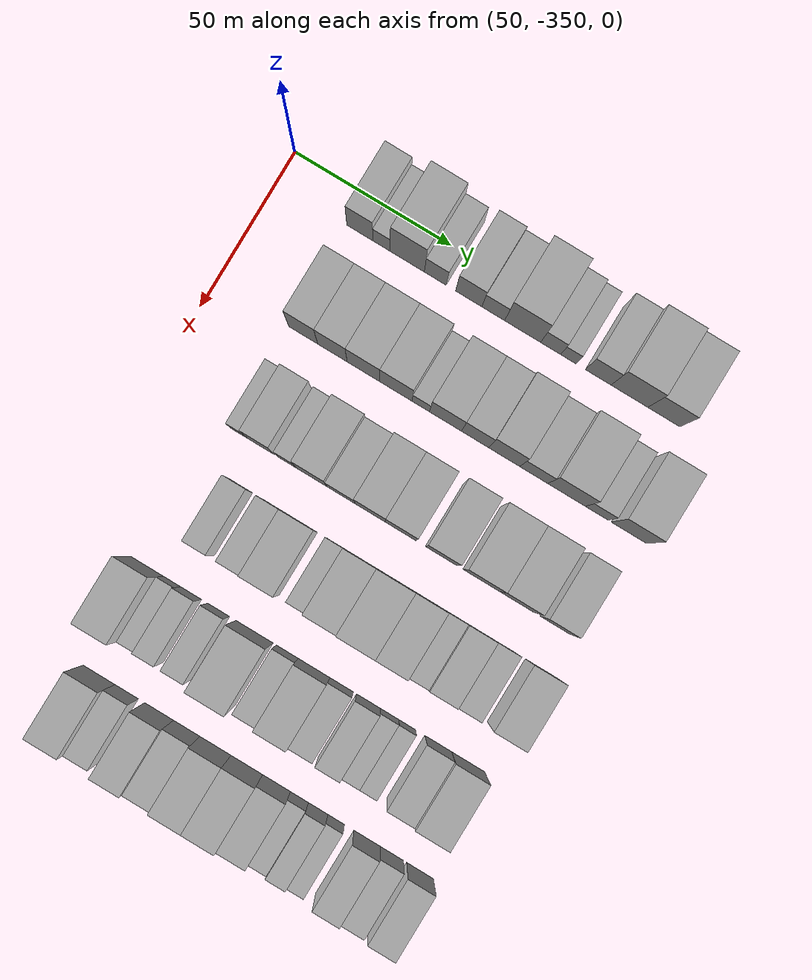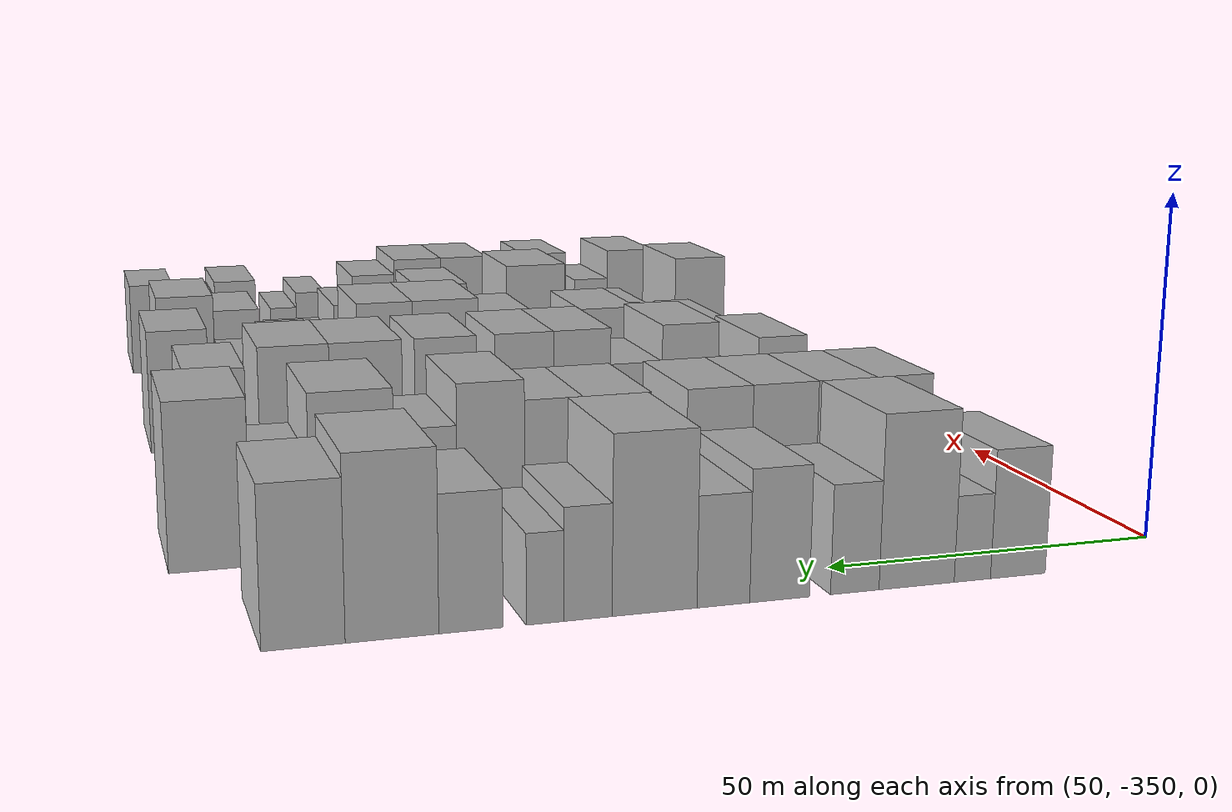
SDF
<sdf version="1.6">
 <world name="default">
  <model name="building_24">
   <static>1</static>
   <pose>50.0000 -323.2628 0 0.000000 0.000000 0.000000</pose>
   <link name="link">
    <pose>0 0 9.00 0 0 0</pose>
    <collision name="collision"><geometry><box><size>20.0000 8.3082 18.0000</size></box></geometry></collision>
    <visual name="visual">
     <cast_shadows>0</cast_shadows>
     <geometry><box><size>20.0000 8.3082 18.0000</size></box></geometry>
     <material>
      <script>
       <uri>model://HANNAS_wall/materials/scripts</uri>
       <uri>model://HANNAS_wall/materials/textures</uri>
       <name>vrc/HANNAS_wall</name>
      </script>
     </material>
    </visual>
   </link>
  </model>
  <model name="building_25">
   <static>1</static>
   <pose>50.0000 -316.3917 0 0.000000 0.000000 0.000000</pose>
   <link name="link">
    <pose>0 0 6.00 0 0 0</pose>
    <collision name="collision"><geometry><box><size>20.0000 5.4340 12.0000</size></box></geometry></collision>
    <visual name="visual">
     <cast_shadows>0</cast_shadows>
     <geometry><box><size>20.0000 5.4340 12.0000</size></box></geometry>
     <material>
      <script>
       <uri>model://HANNAS_wall/materials/scripts</uri>
       <uri>model://HANNAS_wall/materials/textures</uri>
       <name>vrc/HANNAS_wall</name>
      </script>
     </material>
    </visual>
   </link>
  </model>
  <model name="building_26">
   <static>1</static>
   <pose>50.0000 -308.1510 0 0.000000 0.000000 0.000000</pose>
   <link name="link">
    <pose>0 0 12.00 0 0 0</pose>
    <collision name="collision"><geometry><box><size>20.0000 11.0475 24.0000</size></box></geometry></collision>
    <visual name="visual">
     <cast_shadows>0</cast_shadows>
     <geometry><box><size>20.0000 11.0475 24.0000</size></box></geometry>
     <material>
      <script>
       <uri>model://HANNAS_wall/materials/scripts</uri>
       <uri>model://HANNAS_wall/materials/textures</uri>
       <name>vrc/HANNAS_wall</name>
      </script>
     </material>
    </visual>
   </link>
  </model>
  <model name="building_27">
   <static>1</static>
   <pose>50.0000 -299.1299 0 0.000000 0.000000 0.000000</pose>
   <link name="link">
    <pose>0 0 7.50 0 0 0</pose>
    <collision name="collision"><geometry><box><size>20.0000 6.9947 15.0000</size></box></geometry></collision>
    <visual name="visual">
     <cast_shadows>0</cast_shadows>
     <geometry><box><size>20.0000 6.9947 15.0000</size></box></geometry>
     <material>
      <script>
       <uri>model://HANNAS_wall/materials/scripts</uri>
       <uri>model://HANNAS_wall/materials/textures</uri>
       <name>vrc/HANNAS_wall</name>
      </script>
     </material>
    </visual>
   </link>
  </model>
  <model name="building_28">
   <static>1</static>
   <pose>50.0000 -288.4322 0 0.000000 0.000000 0.000000</pose>
   <link name="link">
    <pose>0 0 9.00 0 0 0</pose>
    <collision name="collision"><geometry><box><size>20.0000 8.4007 18.0000</size></box></geometry></collision>
    <visual name="visual">
     <cast_shadows>0</cast_shadows>
     <geometry><box><size>20.0000 8.4007 18.0000</size></box></geometry>
     <material>
      <script>
       <uri>model://HANNAS_wall/materials/scripts</uri>
       <uri>model://HANNAS_wall/materials/textures</uri>
       <name>vrc/HANNAS_wall</name>
      </script>
     </material>
    </visual>
   </link>
  </model>
  <model name="building_29">
   <static>1</static>
   <pose>50.0000 -280.5858 0 0.000000 0.000000 0.000000</pose>
   <link name="link">
    <pose>0 0 7.50 0 0 0</pose>
    <collision name="collision"><geometry><box><size>20.0000 7.2921 15.0000</size></box></geometry></collision>
    <visual name="visual">
     <cast_shadows>0</cast_shadows>
     <geometry><box><size>20.0000 7.2921 15.0000</size></box></geometry>
     <material>
      <script>
       <uri>model://HANNAS_wall/materials/scripts</uri>
       <uri>model://HANNAS_wall/materials/textures</uri>
       <name>vrc/HANNAS_wall</name>
      </script>
     </material>
    </visual>
   </link>
  </model>
  <model name="building_30">
   <static>1</static>
   <pose>50.0000 -271.1964 0 0.000000 0.000000 0.000000</pose>
   <link name="link">
    <pose>0 0 12.00 0 0 0</pose>
    <collision name="collision"><geometry><box><size>20.0000 11.4867 24.0000</size></box></geometry></collision>
    <visual name="visual">
     <cast_shadows>0</cast_shadows>
     <geometry><box><size>20.0000 11.4867 24.0000</size></box></geometry>
     <material>
      <script>
       <uri>model://HANNAS_wall/materials/scripts</uri>
       <uri>model://HANNAS_wall/materials/textures</uri>
       <name>vrc/HANNAS_wall</name>
      </script>
     </material>
    </visual>
   </link>
  </model>
  <model name="building_31">
   <static>1</static>
   <pose>50.0000 -262.2498 0 0.000000 0.000000 0.000000</pose>
   <link name="link">
    <pose>0 0 7.50 0 0 0</pose>
    <collision name="collision"><geometry><box><size>20.0000 6.4064 15.0000</size></box></geometry></collision>
    <visual name="visual">
     <cast_shadows>0</cast_shadows>
     <geometry><box><size>20.0000 6.4064 15.0000</size></box></geometry>
     <material>
      <script>
       <uri>model://HANNAS_wall/materials/scripts</uri>
       <uri>model://HANNAS_wall/materials/textures</uri>
       <name>vrc/HANNAS_wall</name>
      </script>
     </material>
    </visual>
   </link>
  </model>
  <model name="building_32">
   <static>1</static>
   <pose>50.0000 -256.5939 0 0.000000 0.000000 0.000000</pose>
   <link name="link">
    <pose>0 0 6.00 0 0 0</pose>
    <collision name="collision"><geometry><box><size>20.0000 4.9054 12.0000</size></box></geometry></collision>
    <visual name="visual">
     <cast_shadows>0</cast_shadows>
     <geometry><box><size>20.0000 4.9054 12.0000</size></box></geometry>
     <material>
      <script>
       <uri>model://HANNAS_wall/materials/scripts</uri>
       <uri>model://HANNAS_wall/materials/textures</uri>
       <name>vrc/HANNAS_wall</name>
      </script>
     </material>
    </visual>
   </link>
  </model>
  <model name="building_33">
   <static>1</static>
   <pose>50.0000 -247.0510 0 0.000000 0.000000 0.000000</pose>
   <link name="link">
    <pose>0 0 9.00 0 0 0</pose>
    <collision name="collision"><geometry><box><size>20.0000 8.1805 18.0000</size></box></geometry></collision>
    <visual name="visual">
     <cast_shadows>0</cast_shadows>
     <geometry><box><size>20.0000 8.1805 18.0000</size></box></geometry>
     <material>
      <script>
       <uri>model://HANNAS_wall/materials/scripts</uri>
       <uri>model://HANNAS_wall/materials/textures</uri>
       <name>vrc/HANNAS_wall</name>
      </script>
     </material>
    </visual>
   </link>
  </model>
  <model name="building_34">
   <static>1</static>
   <pose>50.0000 -237.1131 0 0.000000 0.000000 0.000000</pose>
   <link name="link">
    <pose>0 0 12.00 0 0 0</pose>
    <collision name="collision"><geometry><box><size>20.0000 11.6952 24.0000</size></box></geometry></collision>
    <visual name="visual">
     <cast_shadows>0</cast_shadows>
     <geometry><box><size>20.0000 11.6952 24.0000</size></box></geometry>
     <material>
      <script>
       <uri>model://HANNAS_wall/materials/scripts</uri>
       <uri>model://HANNAS_wall/materials/textures</uri>
       <name>vrc/HANNAS_wall</name>
      </script>
     </material>
    </visual>
   </link>
  </model>
  <model name="building_35">
   <static>1</static>
   <pose>50.0000 -226.1334 0 0.000000 0.000000 0.000000</pose>
   <link name="link">
    <pose>0 0 10.50 0 0 0</pose>
    <collision name="collision"><geometry><box><size>20.0000 10.2642 21.0000</size></box></geometry></collision>
    <visual name="visual">
     <cast_shadows>0</cast_shadows>
     <geometry><box><size>20.0000 10.2642 21.0000</size></box></geometry>
     <material>
      <script>
       <uri>model://HANNAS_wall/materials/scripts</uri>
       <uri>model://HANNAS_wall/materials/textures</uri>
       <name>vrc/HANNAS_wall</name>
      </script>
     </material>
    </visual>
   </link>
  </model>
  <model name="building_140">
   <static>1</static>
   <pose>82.0000 -321.8566 0 0.000000 0.000000 0.000000</pose>
   <link name="link">
    <pose>0 0 10.50 0 0 0</pose>
    <collision name="collision"><geometry><box><size>20.0000 9.2300 21.0000</size></box></geometry></collision>
    <visual name="visual">
     <cast_shadows>0</cast_shadows>
     <geometry><box><size>20.0000 9.2300 21.0000</size></box></geometry>
     <material>
      <script>
       <uri>model://HANNAS_wall/materials/scripts</uri>
       <uri>model://HANNAS_wall/materials/textures</uri>
       <name>vrc/HANNAS_wall</name>
      </script>
     </material>
    </visual>
   </link>
  </model>
  <model name="building_141">
   <static>1</static>
   <pose>82.0000 -312.5319 0 0.000000 0.000000 0.000000</pose>
   <link name="link">
    <pose>0 0 10.50 0 0 0</pose>
    <collision name="collision"><geometry><box><size>20.0000 9.4194 21.0000</size></box></geometry></collision>
    <visual name="visual">
     <cast_shadows>0</cast_shadows>
     <geometry><box><size>20.0000 9.4194 21.0000</size></box></geometry>
     <material>
      <script>
       <uri>model://HANNAS_wall/materials/scripts</uri>
       <uri>model://HANNAS_wall/materials/textures</uri>
       <name>vrc/HANNAS_wall</name>
      </script>
     </material>
    </visual>
   </link>
  </model>
  <model name="building_142">
   <static>1</static>
   <pose>82.0000 -302.6242 0 0.000000 0.000000 0.000000</pose>
   <link name="link">
    <pose>0 0 10.50 0 0 0</pose>
    <collision name="collision"><geometry><box><size>20.0000 10.3961 21.0000</size></box></geometry></collision>
    <visual name="visual">
     <cast_shadows>0</cast_shadows>
     <geometry><box><size>20.0000 10.3961 21.0000</size></box></geometry>
     <material>
      <script>
       <uri>model://HANNAS_wall/materials/scripts</uri>
       <uri>model://HANNAS_wall/materials/textures</uri>
       <name>vrc/HANNAS_wall</name>
      </script>
     </material>
    </visual>
   </link>
  </model>
  <model name="building_143">
   <static>1</static>
   <pose>82.0000 -292.2958 0 0.000000 0.000000 0.000000</pose>
   <link name="link">
    <pose>0 0 10.50 0 0 0</pose>
    <collision name="collision"><geometry><box><size>20.0000 10.2606 21.0000</size></box></geometry></collision>
    <visual name="visual">
     <cast_shadows>0</cast_shadows>
     <geometry><box><size>20.0000 10.2606 21.0000</size></box></geometry>
     <material>
      <script>
       <uri>model://HANNAS_wall/materials/scripts</uri>
       <uri>model://HANNAS_wall/materials/textures</uri>
       <name>vrc/HANNAS_wall</name>
      </script>
     </material>
    </visual>
   </link>
  </model>
  <model name="building_144">
   <static>1</static>
   <pose>82.0000 -284.3743 0 0.000000 0.000000 0.000000</pose>
   <link name="link">
    <pose>0 0 6.00 0 0 0</pose>
    <collision name="collision"><geometry><box><size>20.0000 5.5825 12.0000</size></box></geometry></collision>
    <visual name="visual">
     <cast_shadows>0</cast_shadows>
     <geometry><box><size>20.0000 5.5825 12.0000</size></box></geometry>
     <material>
      <script>
       <uri>model://HANNAS_wall/materials/scripts</uri>
       <uri>model://HANNAS_wall/materials/textures</uri>
       <name>vrc/HANNAS_wall</name>
      </script>
     </material>
    </visual>
   </link>
  </model>
  <model name="building_145">
   <static>1</static>
   <pose>82.0000 -276.4588 0 0.000000 0.000000 0.000000</pose>
   <link name="link">
    <pose>0 0 10.50 0 0 0</pose>
    <collision name="collision"><geometry><box><size>20.0000 10.2485 21.0000</size></box></geometry></collision>
    <visual name="visual">
     <cast_shadows>0</cast_shadows>
     <geometry><box><size>20.0000 10.2485 21.0000</size></box></geometry>
     <material>
      <script>
       <uri>model://HANNAS_wall/materials/scripts</uri>
       <uri>model://HANNAS_wall/materials/textures</uri>
       <name>vrc/HANNAS_wall</name>
      </script>
     </material>
    </visual>
   </link>
  </model>
  <model name="building_146">
   <static>1</static>
   <pose>82.0000 -266.9857 0 0.000000 0.000000 0.000000</pose>
   <link name="link">
    <pose>0 0 10.50 0 0 0</pose>
    <collision name="collision"><geometry><box><size>20.0000 8.6979 21.0000</size></box></geometry></collision>
    <visual name="visual">
     <cast_shadows>0</cast_shadows>
     <geometry><box><size>20.0000 8.6979 21.0000</size></box></geometry>
     <material>
      <script>
       <uri>model://HANNAS_wall/materials/scripts</uri>
       <uri>model://HANNAS_wall/materials/textures</uri>
       <name>vrc/HANNAS_wall</name>
      </script>
     </material>
    </visual>
   </link>
  </model>
  <model name="building_147">
   <static>1</static>
   <pose>82.0000 -257.7083 0 0.000000 0.000000 0.000000</pose>
   <link name="link">
    <pose>0 0 12.00 0 0 0</pose>
    <collision name="collision"><geometry><box><size>20.0000 9.8568 24.0000</size></box></geometry></collision>
    <visual name="visual">
     <cast_shadows>0</cast_shadows>
     <geometry><box><size>20.0000 9.8568 24.0000</size></box></geometry>
     <material>
      <script>
       <uri>model://HANNAS_wall/materials/scripts</uri>
       <uri>model://HANNAS_wall/materials/textures</uri>
       <name>vrc/HANNAS_wall</name>
      </script>
     </material>
    </visual>
   </link>
  </model>
  <model name="building_148">
   <static>1</static>
   <pose>82.0000 -248.2976 0 0.000000 0.000000 0.000000</pose>
   <link name="link">
    <pose>0 0 9.00 0 0 0</pose>
    <collision name="collision"><geometry><box><size>20.0000 8.9646 18.0000</size></box></geometry></collision>
    <visual name="visual">
     <cast_shadows>0</cast_shadows>
     <geometry><box><size>20.0000 8.9646 18.0000</size></box></geometry>
     <material>
      <script>
       <uri>model://HANNAS_wall/materials/scripts</uri>
       <uri>model://HANNAS_wall/materials/textures</uri>
       <name>vrc/HANNAS_wall</name>
      </script>
     </material>
    </visual>
   </link>
  </model>
  <model name="building_149">
   <static>1</static>
   <pose>82.0000 -237.8539 0 0.000000 0.000000 0.000000</pose>
   <link name="link">
    <pose>0 0 12.00 0 0 0</pose>
    <collision name="collision"><geometry><box><size>20.0000 11.9228 24.0000</size></box></geometry></collision>
    <visual name="visual">
     <cast_shadows>0</cast_shadows>
     <geometry><box><size>20.0000 11.9228 24.0000</size></box></geometry>
     <material>
      <script>
       <uri>model://HANNAS_wall/materials/scripts</uri>
       <uri>model://HANNAS_wall/materials/textures</uri>
       <name>vrc/HANNAS_wall</name>
      </script>
     </material>
    </visual>
   </link>
  </model>
  <model name="building_150">
   <static>1</static>
   <pose>82.0000 -228.2517 0 0.000000 0.000000 0.000000</pose>
   <link name="link">
    <pose>0 0 7.50 0 0 0</pose>
    <collision name="collision"><geometry><box><size>20.0000 7.2816 15.0000</size></box></geometry></collision>
    <visual name="visual">
     <cast_shadows>0</cast_shadows>
     <geometry><box><size>20.0000 7.2816 15.0000</size></box></geometry>
     <material>
      <script>
       <uri>model://HANNAS_wall/materials/scripts</uri>
       <uri>model://HANNAS_wall/materials/textures</uri>
       <name>vrc/HANNAS_wall</name>
      </script>
     </material>
    </visual>
   </link>
  </model>
  <model name="building_151">
   <static>1</static>
   <pose>82.0000 -218.0146 0 0.000000 0.000000 0.000000</pose>
   <link name="link">
    <pose>0 0 12.00 0 0 0</pose>
    <collision name="collision"><geometry><box><size>20.0000 11.1925 24.0000</size></box></geometry></collision>
    <visual name="visual">
     <cast_shadows>0</cast_shadows>
     <geometry><box><size>20.0000 11.1925 24.0000</size></box></geometry>
     <material>
      <script>
       <uri>model://HANNAS_wall/materials/scripts</uri>
       <uri>model://HANNAS_wall/materials/textures</uri>
       <name>vrc/HANNAS_wall</name>
      </script>
     </material>
    </visual>
   </link>
  </model>
  <model name="building_262">
   <static>1</static>
   <pose>114.0000 -322.8476 0 0.000000 0.000000 0.000000</pose>
   <link name="link">
    <pose>0 0 6.00 0 0 0</pose>
    <collision name="collision"><geometry><box><size>20.0000 5.3714 12.0000</size></box></geometry></collision>
    <visual name="visual">
     <cast_shadows>0</cast_shadows>
     <geometry><box><size>20.0000 5.3714 12.0000</size></box></geometry>
     <material>
      <script>
       <uri>model://HANNAS_wall/materials/scripts</uri>
       <uri>model://HANNAS_wall/materials/textures</uri>
       <name>vrc/HANNAS_wall</name>
      </script>
     </material>
    </visual>
   </link>
  </model>
  <model name="building_263">
   <static>1</static>
   <pose>114.0000 -315.8337 0 0.000000 0.000000 0.000000</pose>
   <link name="link">
    <pose>0 0 10.50 0 0 0</pose>
    <collision name="collision"><geometry><box><size>20.0000 8.6563 21.0000</size></box></geometry></collision>
    <visual name="visual">
     <cast_shadows>0</cast_shadows>
     <geometry><box><size>20.0000 8.6563 21.0000</size></box></geometry>
     <material>
      <script>
       <uri>model://HANNAS_wall/materials/scripts</uri>
       <uri>model://HANNAS_wall/materials/textures</uri>
       <name>vrc/HANNAS_wall</name>
      </script>
     </material>
    </visual>
   </link>
  </model>
  <model name="building_264">
   <static>1</static>
   <pose>114.0000 -307.4612 0 0.000000 0.000000 0.000000</pose>
   <link name="link">
    <pose>0 0 7.50 0 0 0</pose>
    <collision name="collision"><geometry><box><size>20.0000 6.0888 15.0000</size></box></geometry></collision>
    <visual name="visual">
     <cast_shadows>0</cast_shadows>
     <geometry><box><size>20.0000 6.0888 15.0000</size></box></geometry>
     <material>
      <script>
       <uri>model://HANNAS_wall/materials/scripts</uri>
       <uri>model://HANNAS_wall/materials/textures</uri>
       <name>vrc/HANNAS_wall</name>
      </script>
     </material>
    </visual>
   </link>
  </model>
  <model name="building_265">
   <static>1</static>
   <pose>114.0000 -299.5221 0 0.000000 0.000000 0.000000</pose>
   <link name="link">
    <pose>0 0 12.00 0 0 0</pose>
    <collision name="collision"><geometry><box><size>20.0000 9.7893 24.0000</size></box></geometry></collision>
    <visual name="visual">
     <cast_shadows>0</cast_shadows>
     <geometry><box><size>20.0000 9.7893 24.0000</size></box></geometry>
     <material>
      <script>
       <uri>model://HANNAS_wall/materials/scripts</uri>
       <uri>model://HANNAS_wall/materials/textures</uri>
       <name>vrc/HANNAS_wall</name>
      </script>
     </material>
    </visual>
   </link>
  </model>
  <model name="building_266">
   <static>1</static>
   <pose>114.0000 -290.2111 0 0.000000 0.000000 0.000000</pose>
   <link name="link">
    <pose>0 0 9.00 0 0 0</pose>
    <collision name="collision"><geometry><box><size>20.0000 8.8328 18.0000</size></box></geometry></collision>
    <visual name="visual">
     <cast_shadows>0</cast_shadows>
     <geometry><box><size>20.0000 8.8328 18.0000</size></box></geometry>
     <material>
      <script>
       <uri>model://HANNAS_wall/materials/scripts</uri>
       <uri>model://HANNAS_wall/materials/textures</uri>
       <name>vrc/HANNAS_wall</name>
      </script>
     </material>
    </visual>
   </link>
  </model>
  <model name="building_267">
   <static>1</static>
   <pose>114.0000 -280.9830 0 0.000000 0.000000 0.000000</pose>
   <link name="link">
    <pose>0 0 12.00 0 0 0</pose>
    <collision name="collision"><geometry><box><size>20.0000 9.6234 24.0000</size></box></geometry></collision>
    <visual name="visual">
     <cast_shadows>0</cast_shadows>
     <geometry><box><size>20.0000 9.6234 24.0000</size></box></geometry>
     <material>
      <script>
       <uri>model://HANNAS_wall/materials/scripts</uri>
       <uri>model://HANNAS_wall/materials/textures</uri>
       <name>vrc/HANNAS_wall</name>
      </script>
     </material>
    </visual>
   </link>
  </model>
  <model name="building_268">
   <static>1</static>
   <pose>114.0000 -271.3017 0 0.000000 0.000000 0.000000</pose>
   <link name="link">
    <pose>0 0 12.00 0 0 0</pose>
    <collision name="collision"><geometry><box><size>20.0000 9.7391 24.0000</size></box></geometry></collision>
    <visual name="visual">
     <cast_shadows>0</cast_shadows>
     <geometry><box><size>20.0000 9.7391 24.0000</size></box></geometry>
     <material>
      <script>
       <uri>model://HANNAS_wall/materials/scripts</uri>
       <uri>model://HANNAS_wall/materials/textures</uri>
       <name>vrc/HANNAS_wall</name>
      </script>
     </material>
    </visual>
   </link>
  </model>
  <model name="building_269">
   <static>1</static>
   <pose>114.0000 -258.4647 0 0.000000 0.000000 0.000000</pose>
   <link name="link">
    <pose>0 0 12.00 0 0 0</pose>
    <collision name="collision"><geometry><box><size>20.0000 9.9349 24.0000</size></box></geometry></collision>
    <visual name="visual">
     <cast_shadows>0</cast_shadows>
     <geometry><box><size>20.0000 9.9349 24.0000</size></box></geometry>
     <material>
      <script>
       <uri>model://HANNAS_wall/materials/scripts</uri>
       <uri>model://HANNAS_wall/materials/textures</uri>
       <name>vrc/HANNAS_wall</name>
      </script>
     </material>
    </visual>
   </link>
  </model>
  <model name="building_270">
   <static>1</static>
   <pose>114.0000 -245.7603 0 0.000000 0.000000 0.000000</pose>
   <link name="link">
    <pose>0 0 12.00 0 0 0</pose>
    <collision name="collision"><geometry><box><size>20.0000 11.4740 24.0000</size></box></geometry></collision>
    <visual name="visual">
     <cast_shadows>0</cast_shadows>
     <geometry><box><size>20.0000 11.4740 24.0000</size></box></geometry>
     <material>
      <script>
       <uri>model://HANNAS_wall/materials/scripts</uri>
       <uri>model://HANNAS_wall/materials/textures</uri>
       <name>vrc/HANNAS_wall</name>
      </script>
     </material>
    </visual>
   </link>
  </model>
  <model name="building_271">
   <static>1</static>
   <pose>114.0000 -234.5190 0 0.000000 0.000000 0.000000</pose>
   <link name="link">
    <pose>0 0 12.00 0 0 0</pose>
    <collision name="collision"><geometry><box><size>20.0000 11.0085 24.0000</size></box></geometry></collision>
    <visual name="visual">
     <cast_shadows>0</cast_shadows>
     <geometry><box><size>20.0000 11.0085 24.0000</size></box></geometry>
     <material>
      <script>
       <uri>model://HANNAS_wall/materials/scripts</uri>
       <uri>model://HANNAS_wall/materials/textures</uri>
       <name>vrc/HANNAS_wall</name>
      </script>
     </material>
    </visual>
   </link>
  </model>
  <model name="building_272">
   <static>1</static>
   <pose>114.0000 -222.3102 0 0.000000 0.000000 0.000000</pose>
   <link name="link">
    <pose>0 0 10.50 0 0 0</pose>
    <collision name="collision"><geometry><box><size>20.0000 9.4092 21.0000</size></box></geometry></collision>
    <visual name="visual">
     <cast_shadows>0</cast_shadows>
     <geometry><box><size>20.0000 9.4092 21.0000</size></box></geometry>
     <material>
      <script>
       <uri>model://HANNAS_wall/materials/scripts</uri>
       <uri>model://HANNAS_wall/materials/textures</uri>
       <name>vrc/HANNAS_wall</name>
      </script>
     </material>
    </visual>
   </link>
  </model>
  <model name="building_382">
   <static>1</static>
   <pose>146.0000 -314.8124 0 0.000000 0.000000 0.000000</pose>
   <link name="link">
    <pose>0 0 9.00 0 0 0</pose>
    <collision name="collision"><geometry><box><size>20.0000 7.2104 18.0000</size></box></geometry></collision>
    <visual name="visual">
     <cast_shadows>0</cast_shadows>
     <geometry><box><size>20.0000 7.2104 18.0000</size></box></geometry>
     <material>
      <script>
       <uri>model://HANNAS_wall/materials/scripts</uri>
       <uri>model://HANNAS_wall/materials/textures</uri>
       <name>vrc/HANNAS_wall</name>
      </script>
     </material>
    </visual>
   </link>
  </model>
  <model name="building_383">
   <static>1</static>
   <pose>146.0000 -304.5904 0 0.000000 0.000000 0.000000</pose>
   <link name="link">
    <pose>0 0 9.00 0 0 0</pose>
    <collision name="collision"><geometry><box><size>20.0000 7.2335 18.0000</size></box></geometry></collision>
    <visual name="visual">
     <cast_shadows>0</cast_shadows>
     <geometry><box><size>20.0000 7.2335 18.0000</size></box></geometry>
     <material>
      <script>
       <uri>model://HANNAS_wall/materials/scripts</uri>
       <uri>model://HANNAS_wall/materials/textures</uri>
       <name>vrc/HANNAS_wall</name>
      </script>
     </material>
    </visual>
   </link>
  </model>
  <model name="building_384">
   <static>1</static>
   <pose>146.0000 -295.7489 0 0.000000 0.000000 0.000000</pose>
   <link name="link">
    <pose>0 0 10.50 0 0 0</pose>
    <collision name="collision"><geometry><box><size>20.0000 10.4496 21.0000</size></box></geometry></collision>
    <visual name="visual">
     <cast_shadows>0</cast_shadows>
     <geometry><box><size>20.0000 10.4496 21.0000</size></box></geometry>
     <material>
      <script>
       <uri>model://HANNAS_wall/materials/scripts</uri>
       <uri>model://HANNAS_wall/materials/textures</uri>
       <name>vrc/HANNAS_wall</name>
      </script>
     </material>
    </visual>
   </link>
  </model>
  <model name="building_385">
   <static>1</static>
   <pose>146.0000 -284.6674 0 0.000000 0.000000 0.000000</pose>
   <link name="link">
    <pose>0 0 6.00 0 0 0</pose>
    <collision name="collision"><geometry><box><size>20.0000 5.7134 12.0000</size></box></geometry></collision>
    <visual name="visual">
     <cast_shadows>0</cast_shadows>
     <geometry><box><size>20.0000 5.7134 12.0000</size></box></geometry>
     <material>
      <script>
       <uri>model://HANNAS_wall/materials/scripts</uri>
       <uri>model://HANNAS_wall/materials/textures</uri>
       <name>vrc/HANNAS_wall</name>
      </script>
     </material>
    </visual>
   </link>
  </model>
  <model name="building_386">
   <static>1</static>
   <pose>146.0000 -276.7132 0 0.000000 0.000000 0.000000</pose>
   <link name="link">
    <pose>0 0 10.50 0 0 0</pose>
    <collision name="collision"><geometry><box><size>20.0000 10.1951 21.0000</size></box></geometry></collision>
    <visual name="visual">
     <cast_shadows>0</cast_shadows>
     <geometry><box><size>20.0000 10.1951 21.0000</size></box></geometry>
     <material>
      <script>
       <uri>model://HANNAS_wall/materials/scripts</uri>
       <uri>model://HANNAS_wall/materials/textures</uri>
       <name>vrc/HANNAS_wall</name>
      </script>
     </material>
    </visual>
   </link>
  </model>
  <model name="building_387">
   <static>1</static>
   <pose>146.0000 -265.7053 0 0.000000 0.000000 0.000000</pose>
   <link name="link">
    <pose>0 0 12.00 0 0 0</pose>
    <collision name="collision"><geometry><box><size>20.0000 11.8207 24.0000</size></box></geometry></collision>
    <visual name="visual">
     <cast_shadows>0</cast_shadows>
     <geometry><box><size>20.0000 11.8207 24.0000</size></box></geometry>
     <material>
      <script>
       <uri>model://HANNAS_wall/materials/scripts</uri>
       <uri>model://HANNAS_wall/materials/textures</uri>
       <name>vrc/HANNAS_wall</name>
      </script>
     </material>
    </visual>
   </link>
  </model>
  <model name="building_388">
   <static>1</static>
   <pose>146.0000 -254.8939 0 0.000000 0.000000 0.000000</pose>
   <link name="link">
    <pose>0 0 12.00 0 0 0</pose>
    <collision name="collision"><geometry><box><size>20.0000 9.8021 24.0000</size></box></geometry></collision>
    <visual name="visual">
     <cast_shadows>0</cast_shadows>
     <geometry><box><size>20.0000 9.8021 24.0000</size></box></geometry>
     <material>
      <script>
       <uri>model://HANNAS_wall/materials/scripts</uri>
       <uri>model://HANNAS_wall/materials/textures</uri>
       <name>vrc/HANNAS_wall</name>
      </script>
     </material>
    </visual>
   </link>
  </model>
  <model name="building_389">
   <static>1</static>
   <pose>146.0000 -246.7170 0 0.000000 0.000000 0.000000</pose>
   <link name="link">
    <pose>0 0 7.50 0 0 0</pose>
    <collision name="collision"><geometry><box><size>20.0000 6.5517 15.0000</size></box></geometry></collision>
    <visual name="visual">
     <cast_shadows>0</cast_shadows>
     <geometry><box><size>20.0000 6.5517 15.0000</size></box></geometry>
     <material>
      <script>
       <uri>model://HANNAS_wall/materials/scripts</uri>
       <uri>model://HANNAS_wall/materials/textures</uri>
       <name>vrc/HANNAS_wall</name>
      </script>
     </material>
    </visual>
   </link>
  </model>
  <model name="building_390">
   <static>1</static>
   <pose>146.0000 -239.0877 0 0.000000 0.000000 0.000000</pose>
   <link name="link">
    <pose>0 0 9.00 0 0 0</pose>
    <collision name="collision"><geometry><box><size>20.0000 8.7068 18.0000</size></box></geometry></collision>
    <visual name="visual">
     <cast_shadows>0</cast_shadows>
     <geometry><box><size>20.0000 8.7068 18.0000</size></box></geometry>
     <material>
      <script>
       <uri>model://HANNAS_wall/materials/scripts</uri>
       <uri>model://HANNAS_wall/materials/textures</uri>
       <name>vrc/HANNAS_wall</name>
      </script>
     </material>
    </visual>
   </link>
  </model>
  <model name="building_391">
   <static>1</static>
   <pose>146.0000 -231.0192 0 0.000000 0.000000 0.000000</pose>
   <link name="link">
    <pose>0 0 7.50 0 0 0</pose>
    <collision name="collision"><geometry><box><size>20.0000 7.4302 15.0000</size></box></geometry></collision>
    <visual name="visual">
     <cast_shadows>0</cast_shadows>
     <geometry><box><size>20.0000 7.4302 15.0000</size></box></geometry>
     <material>
      <script>
       <uri>model://HANNAS_wall/materials/scripts</uri>
       <uri>model://HANNAS_wall/materials/textures</uri>
       <name>vrc/HANNAS_wall</name>
      </script>
     </material>
    </visual>
   </link>
  </model>
  <model name="building_392">
   <static>1</static>
   <pose>146.0000 -219.2615 0 0.000000 0.000000 0.000000</pose>
   <link name="link">
    <pose>0 0 10.50 0 0 0</pose>
    <collision name="collision"><geometry><box><size>20.0000 10.0850 21.0000</size></box></geometry></collision>
    <visual name="visual">
     <cast_shadows>0</cast_shadows>
     <geometry><box><size>20.0000 10.0850 21.0000</size></box></geometry>
     <material>
      <script>
       <uri>model://HANNAS_wall/materials/scripts</uri>
       <uri>model://HANNAS_wall/materials/textures</uri>
       <name>vrc/HANNAS_wall</name>
      </script>
     </material>
    </visual>
   </link>
  </model>
  <model name="building_499">
   <static>1</static>
   <pose>178.0000 -325.3308 0 0.000000 0.000000 0.000000</pose>
   <link name="link">
    <pose>0 0 12.00 0 0 0</pose>
    <collision name="collision"><geometry><box><size>20.0000 10.5188 24.0000</size></box></geometry></collision>
    <visual name="visual">
     <cast_shadows>0</cast_shadows>
     <geometry><box><size>20.0000 10.5188 24.0000</size></box></geometry>
     <material>
      <script>
       <uri>model://HANNAS_wall/materials/scripts</uri>
       <uri>model://HANNAS_wall/materials/textures</uri>
       <name>vrc/HANNAS_wall</name>
      </script>
     </material>
    </visual>
   </link>
  </model>
  <model name="building_500">
   <static>1</static>
   <pose>178.0000 -317.3652 0 0.000000 0.000000 0.000000</pose>
   <link name="link">
    <pose>0 0 6.00 0 0 0</pose>
    <collision name="collision"><geometry><box><size>20.0000 5.4123 12.0000</size></box></geometry></collision>
    <visual name="visual">
     <cast_shadows>0</cast_shadows>
     <geometry><box><size>20.0000 5.4123 12.0000</size></box></geometry>
     <material>
      <script>
       <uri>model://HANNAS_wall/materials/scripts</uri>
       <uri>model://HANNAS_wall/materials/textures</uri>
       <name>vrc/HANNAS_wall</name>
      </script>
     </material>
    </visual>
   </link>
  </model>
  <model name="building_501">
   <static>1</static>
   <pose>178.0000 -311.3197 0 0.000000 0.000000 0.000000</pose>
   <link name="link">
    <pose>0 0 7.50 0 0 0</pose>
    <collision name="collision"><geometry><box><size>20.0000 6.6788 15.0000</size></box></geometry></collision>
    <visual name="visual">
     <cast_shadows>0</cast_shadows>
     <geometry><box><size>20.0000 6.6788 15.0000</size></box></geometry>
     <material>
      <script>
       <uri>model://HANNAS_wall/materials/scripts</uri>
       <uri>model://HANNAS_wall/materials/textures</uri>
       <name>vrc/HANNAS_wall</name>
      </script>
     </material>
    </visual>
   </link>
  </model>
  <model name="building_502">
   <static>1</static>
   <pose>178.0000 -302.4929 0 0.000000 0.000000 0.000000</pose>
   <link name="link">
    <pose>0 0 7.50 0 0 0</pose>
    <collision name="collision"><geometry><box><size>20.0000 6.9747 15.0000</size></box></geometry></collision>
    <visual name="visual">
     <cast_shadows>0</cast_shadows>
     <geometry><box><size>20.0000 6.9747 15.0000</size></box></geometry>
     <material>
      <script>
       <uri>model://HANNAS_wall/materials/scripts</uri>
       <uri>model://HANNAS_wall/materials/textures</uri>
       <name>vrc/HANNAS_wall</name>
      </script>
     </material>
    </visual>
   </link>
  </model>
  <model name="building_503">
   <static>1</static>
   <pose>178.0000 -291.0729 0 0.000000 0.000000 0.000000</pose>
   <link name="link">
    <pose>0 0 12.00 0 0 0</pose>
    <collision name="collision"><geometry><box><size>20.0000 11.8653 24.0000</size></box></geometry></collision>
    <visual name="visual">
     <cast_shadows>0</cast_shadows>
     <geometry><box><size>20.0000 11.8653 24.0000</size></box></geometry>
     <material>
      <script>
       <uri>model://HANNAS_wall/materials/scripts</uri>
       <uri>model://HANNAS_wall/materials/textures</uri>
       <name>vrc/HANNAS_wall</name>
      </script>
     </material>
    </visual>
   </link>
  </model>
  <model name="building_504">
   <static>1</static>
   <pose>178.0000 -280.6412 0 0.000000 0.000000 0.000000</pose>
   <link name="link">
    <pose>0 0 7.50 0 0 0</pose>
    <collision name="collision"><geometry><box><size>20.0000 6.9980 15.0000</size></box></geometry></collision>
    <visual name="visual">
     <cast_shadows>0</cast_shadows>
     <geometry><box><size>20.0000 6.9980 15.0000</size></box></geometry>
     <material>
      <script>
       <uri>model://HANNAS_wall/materials/scripts</uri>
       <uri>model://HANNAS_wall/materials/textures</uri>
       <name>vrc/HANNAS_wall</name>
      </script>
     </material>
    </visual>
   </link>
  </model>
  <model name="building_505">
   <static>1</static>
   <pose>178.0000 -272.1236 0 0.000000 0.000000 0.000000</pose>
   <link name="link">
    <pose>0 0 10.50 0 0 0</pose>
    <collision name="collision"><geometry><box><size>20.0000 10.0372 21.0000</size></box></geometry></collision>
    <visual name="visual">
     <cast_shadows>0</cast_shadows>
     <geometry><box><size>20.0000 10.0372 21.0000</size></box></geometry>
     <material>
      <script>
       <uri>model://HANNAS_wall/materials/scripts</uri>
       <uri>model://HANNAS_wall/materials/textures</uri>
       <name>vrc/HANNAS_wall</name>
      </script>
     </material>
    </visual>
   </link>
  </model>
  <model name="building_506">
   <static>1</static>
   <pose>178.0000 -263.3645 0 0.000000 0.000000 0.000000</pose>
   <link name="link">
    <pose>0 0 7.50 0 0 0</pose>
    <collision name="collision"><geometry><box><size>20.0000 7.4810 15.0000</size></box></geometry></collision>
    <visual name="visual">
     <cast_shadows>0</cast_shadows>
     <geometry><box><size>20.0000 7.4810 15.0000</size></box></geometry>
     <material>
      <script>
       <uri>model://HANNAS_wall/materials/scripts</uri>
       <uri>model://HANNAS_wall/materials/textures</uri>
       <name>vrc/HANNAS_wall</name>
      </script>
     </material>
    </visual>
   </link>
  </model>
  <model name="building_507">
   <static>1</static>
   <pose>178.0000 -254.8418 0 0.000000 0.000000 0.000000</pose>
   <link name="link">
    <pose>0 0 9.00 0 0 0</pose>
    <collision name="collision"><geometry><box><size>20.0000 7.5644 18.0000</size></box></geometry></collision>
    <visual name="visual">
     <cast_shadows>0</cast_shadows>
     <geometry><box><size>20.0000 7.5644 18.0000</size></box></geometry>
     <material>
      <script>
       <uri>model://HANNAS_wall/materials/scripts</uri>
       <uri>model://HANNAS_wall/materials/textures</uri>
       <name>vrc/HANNAS_wall</name>
      </script>
     </material>
    </visual>
   </link>
  </model>
  <model name="building_508">
   <static>1</static>
   <pose>178.0000 -248.1193 0 0.000000 0.000000 0.000000</pose>
   <link name="link">
    <pose>0 0 6.00 0 0 0</pose>
    <collision name="collision"><geometry><box><size>20.0000 5.8806 12.0000</size></box></geometry></collision>
    <visual name="visual">
     <cast_shadows>0</cast_shadows>
     <geometry><box><size>20.0000 5.8806 12.0000</size></box></geometry>
     <material>
      <script>
       <uri>model://HANNAS_wall/materials/scripts</uri>
       <uri>model://HANNAS_wall/materials/textures</uri>
       <name>vrc/HANNAS_wall</name>
      </script>
     </material>
    </visual>
   </link>
  </model>
  <model name="building_509">
   <static>1</static>
   <pose>178.0000 -242.5366 0 0.000000 0.000000 0.000000</pose>
   <link name="link">
    <pose>0 0 6.00 0 0 0</pose>
    <collision name="collision"><geometry><box><size>20.0000 5.2847 12.0000</size></box></geometry></collision>
    <visual name="visual">
     <cast_shadows>0</cast_shadows>
     <geometry><box><size>20.0000 5.2847 12.0000</size></box></geometry>
     <material>
      <script>
       <uri>model://HANNAS_wall/materials/scripts</uri>
       <uri>model://HANNAS_wall/materials/textures</uri>
       <name>vrc/HANNAS_wall</name>
      </script>
     </material>
    </visual>
   </link>
  </model>
  <model name="building_510">
   <static>1</static>
   <pose>178.0000 -232.6457 0 0.000000 0.000000 0.000000</pose>
   <link name="link">
    <pose>0 0 9.00 0 0 0</pose>
    <collision name="collision"><geometry><box><size>20.0000 8.4971 18.0000</size></box></geometry></collision>
    <visual name="visual">
     <cast_shadows>0</cast_shadows>
     <geometry><box><size>20.0000 8.4971 18.0000</size></box></geometry>
     <material>
      <script>
       <uri>model://HANNAS_wall/materials/scripts</uri>
       <uri>model://HANNAS_wall/materials/textures</uri>
       <name>vrc/HANNAS_wall</name>
      </script>
     </material>
    </visual>
   </link>
  </model>
  <model name="building_511">
   <static>1</static>
   <pose>178.0000 -223.1670 0 0.000000 0.000000 0.000000</pose>
   <link name="link">
    <pose>0 0 10.50 0 0 0</pose>
    <collision name="collision"><geometry><box><size>20.0000 10.4602 21.0000</size></box></geometry></collision>
    <visual name="visual">
     <cast_shadows>0</cast_shadows>
     <geometry><box><size>20.0000 10.4602 21.0000</size></box></geometry>
     <material>
      <script>
       <uri>model://HANNAS_wall/materials/scripts</uri>
       <uri>model://HANNAS_wall/materials/textures</uri>
       <name>vrc/HANNAS_wall</name>
      </script>
     </material>
    </visual>
   </link>
  </model>
  <model name="building_626">
   <static>1</static>
   <pose>210.0000 -321.1500 0 0.000000 0.000000 0.000000</pose>
   <link name="link">
    <pose>0 0 10.50 0 0 0</pose>
    <collision name="collision"><geometry><box><size>20.0000 10.1762 21.0000</size></box></geometry></collision>
    <visual name="visual">
     <cast_shadows>0</cast_shadows>
     <geometry><box><size>20.0000 10.1762 21.0000</size></box></geometry>
     <material>
      <script>
       <uri>model://HANNAS_wall/materials/scripts</uri>
       <uri>model://HANNAS_wall/materials/textures</uri>
       <name>vrc/HANNAS_wall</name>
      </script>
     </material>
    </visual>
   </link>
  </model>
  <model name="building_627">
   <static>1</static>
   <pose>210.0000 -312.3242 0 0.000000 0.000000 0.000000</pose>
   <link name="link">
    <pose>0 0 7.50 0 0 0</pose>
    <collision name="collision"><geometry><box><size>20.0000 7.4754 15.0000</size></box></geometry></collision>
    <visual name="visual">
     <cast_shadows>0</cast_shadows>
     <geometry><box><size>20.0000 7.4754 15.0000</size></box></geometry>
     <material>
      <script>
       <uri>model://HANNAS_wall/materials/scripts</uri>
       <uri>model://HANNAS_wall/materials/textures</uri>
       <name>vrc/HANNAS_wall</name>
      </script>
     </material>
    </visual>
   </link>
  </model>
  <model name="building_628">
   <static>1</static>
   <pose>210.0000 -301.9817 0 0.000000 0.000000 0.000000</pose>
   <link name="link">
    <pose>0 0 10.50 0 0 0</pose>
    <collision name="collision"><geometry><box><size>20.0000 9.2097 21.0000</size></box></geometry></collision>
    <visual name="visual">
     <cast_shadows>0</cast_shadows>
     <geometry><box><size>20.0000 9.2097 21.0000</size></box></geometry>
     <material>
      <script>
       <uri>model://HANNAS_wall/materials/scripts</uri>
       <uri>model://HANNAS_wall/materials/textures</uri>
       <name>vrc/HANNAS_wall</name>
      </script>
     </material>
    </visual>
   </link>
  </model>
  <model name="building_629">
   <static>1</static>
   <pose>210.0000 -293.1928 0 0.000000 0.000000 0.000000</pose>
   <link name="link">
    <pose>0 0 9.00 0 0 0</pose>
    <collision name="collision"><geometry><box><size>20.0000 8.3680 18.0000</size></box></geometry></collision>
    <visual name="visual">
     <cast_shadows>0</cast_shadows>
     <geometry><box><size>20.0000 8.3680 18.0000</size></box></geometry>
     <material>
      <script>
       <uri>model://HANNAS_wall/materials/scripts</uri>
       <uri>model://HANNAS_wall/materials/textures</uri>
       <name>vrc/HANNAS_wall</name>
      </script>
     </material>
    </visual>
   </link>
  </model>
  <model name="building_630">
   <static>1</static>
   <pose>210.0000 -284.0347 0 0.000000 0.000000 0.000000</pose>
   <link name="link">
    <pose>0 0 10.50 0 0 0</pose>
    <collision name="collision"><geometry><box><size>20.0000 9.9482 21.0000</size></box></geometry></collision>
    <visual name="visual">
     <cast_shadows>0</cast_shadows>
     <geometry><box><size>20.0000 9.9482 21.0000</size></box></geometry>
     <material>
      <script>
       <uri>model://HANNAS_wall/materials/scripts</uri>
       <uri>model://HANNAS_wall/materials/textures</uri>
       <name>vrc/HANNAS_wall</name>
      </script>
     </material>
    </visual>
   </link>
  </model>
  <model name="building_631">
   <static>1</static>
   <pose>210.0000 -274.0472 0 0.000000 0.000000 0.000000</pose>
   <link name="link">
    <pose>0 0 10.50 0 0 0</pose>
    <collision name="collision"><geometry><box><size>20.0000 10.0268 21.0000</size></box></geometry></collision>
    <visual name="visual">
     <cast_shadows>0</cast_shadows>
     <geometry><box><size>20.0000 10.0268 21.0000</size></box></geometry>
     <material>
      <script>
       <uri>model://HANNAS_wall/materials/scripts</uri>
       <uri>model://HANNAS_wall/materials/textures</uri>
       <name>vrc/HANNAS_wall</name>
      </script>
     </material>
    </visual>
   </link>
  </model>
  <model name="building_632">
   <static>1</static>
   <pose>210.0000 -264.5925 0 0.000000 0.000000 0.000000</pose>
   <link name="link">
    <pose>0 0 9.00 0 0 0</pose>
    <collision name="collision"><geometry><box><size>20.0000 8.8826 18.0000</size></box></geometry></collision>
    <visual name="visual">
     <cast_shadows>0</cast_shadows>
     <geometry><box><size>20.0000 8.8826 18.0000</size></box></geometry>
     <material>
      <script>
       <uri>model://HANNAS_wall/materials/scripts</uri>
       <uri>model://HANNAS_wall/materials/textures</uri>
       <name>vrc/HANNAS_wall</name>
      </script>
     </material>
    </visual>
   </link>
  </model>
  <model name="building_633">
   <static>1</static>
   <pose>210.0000 -257.3002 0 0.000000 0.000000 0.000000</pose>
   <link name="link">
    <pose>0 0 6.00 0 0 0</pose>
    <collision name="collision"><geometry><box><size>20.0000 5.7020 12.0000</size></box></geometry></collision>
    <visual name="visual">
     <cast_shadows>0</cast_shadows>
     <geometry><box><size>20.0000 5.7020 12.0000</size></box></geometry>
     <material>
      <script>
       <uri>model://HANNAS_wall/materials/scripts</uri>
       <uri>model://HANNAS_wall/materials/textures</uri>
       <name>vrc/HANNAS_wall</name>
      </script>
     </material>
    </visual>
   </link>
  </model>
  <model name="building_634">
   <static>1</static>
   <pose>210.0000 -251.3648 0 0.000000 0.000000 0.000000</pose>
   <link name="link">
    <pose>0 0 7.50 0 0 0</pose>
    <collision name="collision"><geometry><box><size>20.0000 6.1689 15.0000</size></box></geometry></collision>
    <visual name="visual">
     <cast_shadows>0</cast_shadows>
     <geometry><box><size>20.0000 6.1689 15.0000</size></box></geometry>
     <material>
      <script>
       <uri>model://HANNAS_wall/materials/scripts</uri>
       <uri>model://HANNAS_wall/materials/textures</uri>
       <name>vrc/HANNAS_wall</name>
      </script>
     </material>
    </visual>
   </link>
  </model>
  <model name="building_635">
   <static>1</static>
   <pose>210.0000 -245.6375 0 0.000000 0.000000 0.000000</pose>
   <link name="link">
    <pose>0 0 6.00 0 0 0</pose>
    <collision name="collision"><geometry><box><size>20.0000 5.2857 12.0000</size></box></geometry></collision>
    <visual name="visual">
     <cast_shadows>0</cast_shadows>
     <geometry><box><size>20.0000 5.2857 12.0000</size></box></geometry>
     <material>
      <script>
       <uri>model://HANNAS_wall/materials/scripts</uri>
       <uri>model://HANNAS_wall/materials/textures</uri>
       <name>vrc/HANNAS_wall</name>
      </script>
     </material>
    </visual>
   </link>
  </model>
  <model name="building_636">
   <static>1</static>
   <pose>210.0000 -235.8376 0 0.000000 0.000000 0.000000</pose>
   <link name="link">
    <pose>0 0 9.00 0 0 0</pose>
    <collision name="collision"><geometry><box><size>20.0000 8.3141 18.0000</size></box></geometry></collision>
    <visual name="visual">
     <cast_shadows>0</cast_shadows>
     <geometry><box><size>20.0000 8.3141 18.0000</size></box></geometry>
     <material>
      <script>
       <uri>model://HANNAS_wall/materials/scripts</uri>
       <uri>model://HANNAS_wall/materials/textures</uri>
       <name>vrc/HANNAS_wall</name>
      </script>
     </material>
    </visual>
   </link>
  </model>
  <model name="building_637">
   <static>1</static>
   <pose>210.0000 -227.9626 0 0.000000 0.000000 0.000000</pose>
   <link name="link">
    <pose>0 0 7.50 0 0 0</pose>
    <collision name="collision"><geometry><box><size>20.0000 7.4358 15.0000</size></box></geometry></collision>
    <visual name="visual">
     <cast_shadows>0</cast_shadows>
     <geometry><box><size>20.0000 7.4358 15.0000</size></box></geometry>
     <material>
      <script>
       <uri>model://HANNAS_wall/materials/scripts</uri>
       <uri>model://HANNAS_wall/materials/textures</uri>
       <name>vrc/HANNAS_wall</name>
      </script>
     </material>
    </visual>
   </link>
  </model>
  <model name="building_638">
   <static>1</static>
   <pose>210.0000 -218.9859 0 0.000000 0.000000 0.000000</pose>
   <link name="link">
    <pose>0 0 9.00 0 0 0</pose>
    <collision name="collision"><geometry><box><size>20.0000 8.5177 18.0000</size></box></geometry></collision>
    <visual name="visual">
     <cast_shadows>0</cast_shadows>
     <geometry><box><size>20.0000 8.5177 18.0000</size></box></geometry>
     <material>
      <script>
       <uri>model://HANNAS_wall/materials/scripts</uri>
       <uri>model://HANNAS_wall/materials/textures</uri>
       <name>vrc/HANNAS_wall</name>
      </script>
     </material>
    </visual>
   </link>
  </model>
 </world>
</sdf>
